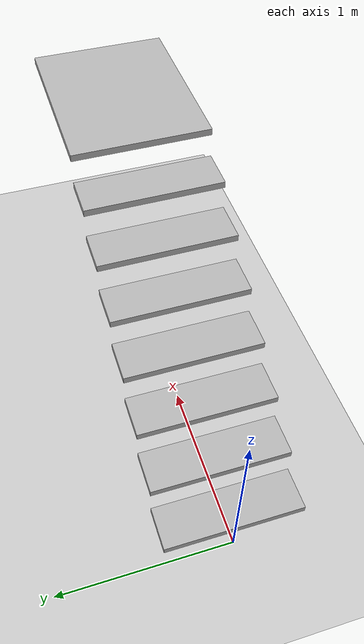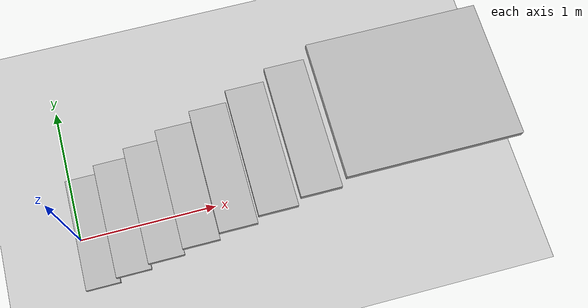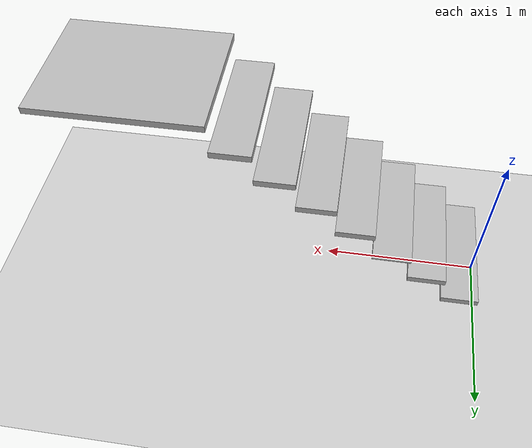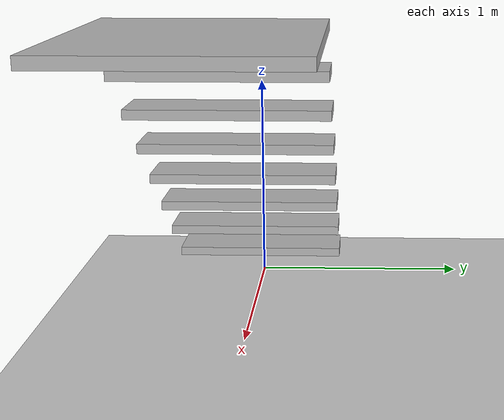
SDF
<?xml version="1.0" ?>
<sdf version="1.4">
  <world name="default">
    <include>
      <uri>model://ground_plane</uri>
    </include>
    <include>
      <uri>model://sun</uri>
    </include>
    <include>
      <uri>model://gazebo_worlds/models/stairs_240x185</uri>
    </include>
    <physics type="ode">
      <gravity>0 0 -9.81</gravity>
    </physics>
  </world>
</sdf>

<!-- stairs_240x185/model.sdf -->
<sdf version='1.4'>
  <model name="stairs_240x185">
    <static>true</static>
    <pose>0 0 0 0 0 0</pose>

    <link name='stairs1'>
      <pose>0.12 0 0.165 0 0 0</pose>

      <collision name='collision'>
        <geometry>
          <box>
            <size>0.24 0.8 0.04</size>
          </box>
        </geometry>
      </collision>

      <visual name='visual'>
        <geometry>
          <box>
            <size>0.24 0.8 0.04</size>
          </box>
        </geometry>
      </visual>
    </link>

    <link name='stairs2'>
      <pose>0.36 0 0.35 0 0 0</pose>

      <collision name='collision'>
        <geometry>
          <box>
            <size>0.24 0.8 0.04</size>
          </box>
        </geometry>
      </collision>

      <visual name='visual'>
        <geometry>
          <box>
            <size>0.24 0.8 0.04</size>
          </box>
        </geometry>
      </visual>
    </link>

    <link name='stairs3'>
      <pose>0.6 0 0.535 0 0 0</pose>

      <collision name='collision'>
        <geometry>
          <box>
            <size>0.24 0.8 0.04</size>
          </box>
        </geometry>
      </collision>

      <visual name='visual'>
        <geometry>
          <box>
            <size>0.24 0.8 0.04</size>
          </box>
        </geometry>
      </visual>
    </link>

    <link name='stairs4'>
      <pose>0.84 0 0.72 0 0 0</pose>

      <collision name='collision'>
        <geometry>
          <box>
            <size>0.24 0.8 0.04</size>
          </box>
        </geometry>
      </collision>

      <visual name='visual'>
        <geometry>
          <box>
            <size>0.24 0.8 0.04</size>
          </box>
        </geometry>
      </visual>
    </link>

    <link name='stairs5'>
      <pose>1.08 0 0.905 0 0 0</pose>

      <collision name='collision'>
        <geometry>
          <box>
            <size>0.24 0.8 0.04</size>
          </box>
        </geometry>
      </collision>

      <visual name='visual'>
        <geometry>
          <box>
            <size>0.24 0.8 0.04</size>
          </box>
        </geometry>
      </visual>
    </link>

    <link name='stairs6'>
      <pose>1.32 0 1.09 0 0 0</pose>

      <collision name='collision'>
        <geometry>
          <box>
            <size>0.24 0.8 0.04</size>
          </box>
        </geometry>
      </collision>

      <visual name='visual'>
        <geometry>
          <box>
            <size>0.24 0.8 0.04</size>
          </box>
        </geometry>
      </visual>
    </link>

    <link name='stairs7'>
      <pose>1.56 0 1.275 0 0 0</pose>

      <collision name='collision'>
        <geometry>
          <box>
            <size>0.24 0.8 0.04</size>
          </box>
        </geometry>
      </collision>

      <visual name='visual'>
        <geometry>
          <box>
            <size>0.24 0.8 0.04</size>
          </box>
        </geometry>
      </visual>
    </link>

    <link name='top'>
      <pose>2.18 0 1.46 0 0 0</pose>

      <collision name='collision'>
        <geometry>
          <box>
            <size>1.0 0.8 0.04</size>
          </box>
        </geometry>
      </collision>

      <visual name='visual'>
        <geometry>
          <box>
            <size>1.0 0.8 0.04</size>
          </box>
        </geometry>
      </visual>
    </link>
  </model>
</sdf>
